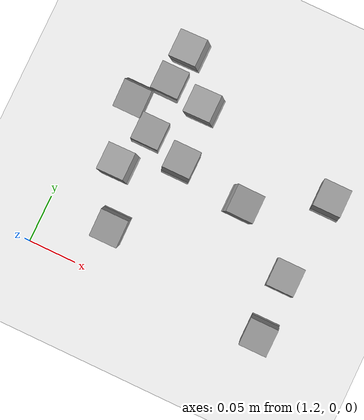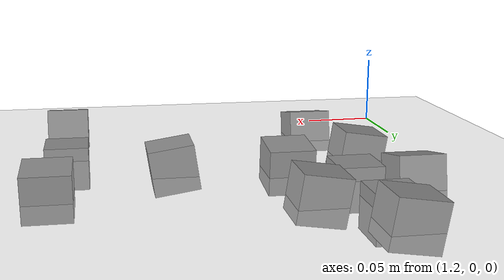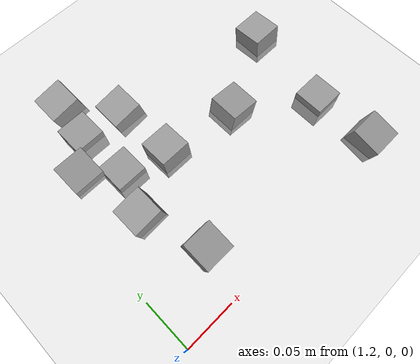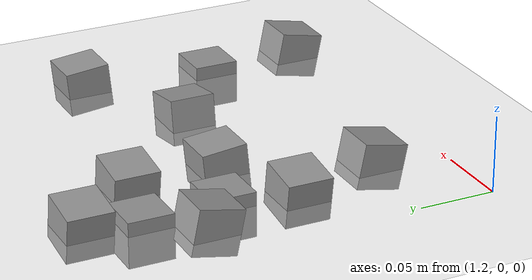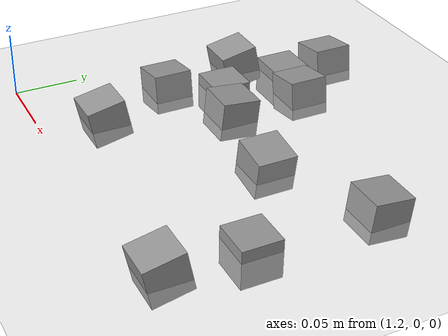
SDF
<sdf version="1.7">
 <world name="default">
  <model name="ground_plane">
   <static>1</static>
   <link name="link">
    <collision name="collision">
     <geometry><plane><normal>0 0 1</normal><size>100 100</size></plane></geometry>
     <surface><friction><ode><mu>100</mu><mu2>50</mu2></ode></friction></surface>
    </collision>
    <visual name="visual">
     <cast_shadows>0</cast_shadows>
     <geometry><plane><normal>0 0 1</normal><size>100 100</size></plane></geometry>
     <material>
      <script><uri>file://media/materials/scripts/gazebo.material</uri><name>Gazebo/Grey</name></script>
     </material>
    </visual>
   </link>
  </model>
  <model name="stone_road">
   <link name="link_0_clone_2_clone_2_clone_13_clone_clone_14">
    <inertial>
     <mass>1</mass>
     <inertia>
      <ixx>0.166667</ixx>
      <ixy>0</ixy>
      <ixz>0</ixz>
      <iyy>0.166667</iyy>
      <iyz>0</iyz>
      <izz>0.166667</izz>
     </inertia>
    </inertial>
    <pose>-0.190578 0.093923 0.003778 -0.1 0 0</pose>
    <kinematic>1</kinematic>
    <visual name="visual">
     <geometry><box><size>0.03 0.03 0.03</size></box></geometry>
     <material>
      <lighting>1</lighting>
      <script><uri>file://media/materials/scripts/gazebo.material</uri><name>Gazebo/Grey</name></script>
      <shader type="pixel"><normal_map>__default__</normal_map></shader>
      <ambient>0.3 0.3 0.3 1</ambient>
      <diffuse>0.7 0.7 0.7 1</diffuse>
      <specular>0.01 0.01 0.01 1</specular>
      <emissive>0 0 0 1</emissive>
     </material>
    </visual>
    <collision name="collision">
     <geometry><box><size>0.03 0.03 0.03</size></box></geometry>
     <surface>
      <friction>
       <ode><mu>1</mu><mu2>1</mu2><fdir1>0 0 0</fdir1><slip1>0</slip1><slip2>0</slip2></ode>
       <torsional>
        <coefficient>1</coefficient>
        <patch_radius>0</patch_radius>
        <surface_radius>0</surface_radius>
        <use_patch_radius>1</use_patch_radius>
        <ode><slip>0</slip></ode>
       </torsional>
      </friction>
      <bounce><restitution_coefficient>0</restitution_coefficient><threshold>1e+06</threshold></bounce>
      <contact>
       <collide_without_contact>0</collide_without_contact>
       <collide_without_contact_bitmask>1</collide_without_contact_bitmask>
       <collide_bitmask>1</collide_bitmask>
       <ode>
        <soft_cfm>0</soft_cfm>
        <soft_erp>0.2</soft_erp>
        <kp>1e+13</kp>
        <kd>1</kd>
        <max_vel>0.01</max_vel>
        <min_depth>0</min_depth>
       </ode>
       <bullet>
        <split_impulse>1</split_impulse>
        <split_impulse_penetration_threshold>-0.01</split_impulse_penetration_threshold>
        <soft_cfm>0</soft_cfm>
        <soft_erp>0.2</soft_erp>
        <kp>1e+13</kp>
        <kd>1</kd>
       </bullet>
      </contact>
     </surface>
    </collision>
   </link>
   <link name="link_0_clone_2_clone_2_clone_13_clone_clone_16_clone_31">
    <inertial>
     <mass>1</mass>
     <inertia>
      <ixx>0.166667</ixx>
      <ixy>0</ixy>
      <ixz>0</ixz>
      <iyy>0.166667</iyy>
      <iyz>0</iyz>
      <izz>0.166667</izz>
     </inertia>
    </inertial>
    <pose>-0.198811 0.004584 -0.006222 0 -0 0</pose>
    <kinematic>1</kinematic>
    <visual name="visual">
     <geometry><box><size>0.03 0.03 0.03</size></box></geometry>
     <material>
      <lighting>1</lighting>
      <script><uri>file://media/materials/scripts/gazebo.material</uri><name>Gazebo/Grey</name></script>
      <shader type="pixel"><normal_map>__default__</normal_map></shader>
      <ambient>0.3 0.3 0.3 1</ambient>
      <diffuse>0.7 0.7 0.7 1</diffuse>
      <specular>0.01 0.01 0.01 1</specular>
      <emissive>0 0 0 1</emissive>
     </material>
    </visual>
    <collision name="collision">
     <geometry><box><size>0.03 0.03 0.03</size></box></geometry>
     <surface>
      <friction>
       <ode><mu>1</mu><mu2>1</mu2><fdir1>0 0 0</fdir1><slip1>0</slip1><slip2>0</slip2></ode>
       <torsional>
        <coefficient>1</coefficient>
        <patch_radius>0</patch_radius>
        <surface_radius>0</surface_radius>
        <use_patch_radius>1</use_patch_radius>
        <ode><slip>0</slip></ode>
       </torsional>
      </friction>
      <bounce><restitution_coefficient>0</restitution_coefficient><threshold>1e+06</threshold></bounce>
      <contact>
       <collide_without_contact>0</collide_without_contact>
       <collide_without_contact_bitmask>1</collide_without_contact_bitmask>
       <collide_bitmask>1</collide_bitmask>
       <ode>
        <soft_cfm>0</soft_cfm>
        <soft_erp>0.2</soft_erp>
        <kp>1e+13</kp>
        <kd>1</kd>
        <max_vel>0.01</max_vel>
        <min_depth>0</min_depth>
       </ode>
       <bullet>
        <split_impulse>1</split_impulse>
        <split_impulse_penetration_threshold>-0.01</split_impulse_penetration_threshold>
        <soft_cfm>0</soft_cfm>
        <soft_erp>0.2</soft_erp>
        <kp>1e+13</kp>
        <kd>1</kd>
       </bullet>
      </contact>
     </surface>
    </collision>
   </link>
   <link name="link_0_clone_2_clone_5">
    <inertial>
     <mass>1</mass>
     <inertia>
      <ixx>0.166667</ixx>
      <ixy>0</ixy>
      <ixz>0</ixz>
      <iyy>0.166667</iyy>
      <iyz>0</iyz>
      <izz>0.166667</izz>
     </inertia>
    </inertial>
    <pose>-0.268485 0.053169 0.003778 0 0.15 0</pose>
    <kinematic>1</kinematic>
    <visual name="visual">
     <geometry><box><size>0.03 0.03 0.03</size></box></geometry>
     <material>
      <lighting>1</lighting>
      <script><uri>file://media/materials/scripts/gazebo.material</uri><name>Gazebo/Grey</name></script>
      <shader type="pixel"><normal_map>__default__</normal_map></shader>
      <ambient>0.3 0.3 0.3 1</ambient>
      <diffuse>0.7 0.7 0.7 1</diffuse>
      <specular>0.01 0.01 0.01 1</specular>
      <emissive>0 0 0 1</emissive>
     </material>
    </visual>
    <collision name="collision">
     <geometry><box><size>0.03 0.03 0.03</size></box></geometry>
     <surface>
      <friction>
       <ode><mu>1</mu><mu2>1</mu2><fdir1>0 0 0</fdir1><slip1>0</slip1><slip2>0</slip2></ode>
       <torsional>
        <coefficient>1</coefficient>
        <patch_radius>0</patch_radius>
        <surface_radius>0</surface_radius>
        <use_patch_radius>1</use_patch_radius>
        <ode><slip>0</slip></ode>
       </torsional>
      </friction>
      <bounce><restitution_coefficient>0</restitution_coefficient><threshold>1e+06</threshold></bounce>
      <contact>
       <collide_without_contact>0</collide_without_contact>
       <collide_without_contact_bitmask>1</collide_without_contact_bitmask>
       <collide_bitmask>1</collide_bitmask>
       <ode>
        <soft_cfm>0</soft_cfm>
        <soft_erp>0.2</soft_erp>
        <kp>1e+13</kp>
        <kd>1</kd>
        <max_vel>0.01</max_vel>
        <min_depth>0</min_depth>
       </ode>
       <bullet>
        <split_impulse>1</split_impulse>
        <split_impulse_penetration_threshold>-0.01</split_impulse_penetration_threshold>
        <soft_cfm>0</soft_cfm>
        <soft_erp>0.2</soft_erp>
        <kp>1e+13</kp>
        <kd>1</kd>
       </bullet>
      </contact>
     </surface>
    </collision>
   </link>
   <link name="link_0_clone_6">
    <inertial>
     <mass>1</mass>
     <inertia>
      <ixx>0.166667</ixx>
      <ixy>0</ixy>
      <ixz>0</ixz>
      <iyy>0.166667</iyy>
      <iyz>0</iyz>
      <izz>0.166667</izz>
     </inertia>
    </inertial>
    <pose>-0.198423 -0.058498 0.003778 0.2 -0 0</pose>
    <kinematic>1</kinematic>
    <visual name="visual">
     <geometry><box><size>0.03 0.03 0.03</size></box></geometry>
     <material>
      <lighting>1</lighting>
      <script><uri>file://media/materials/scripts/gazebo.material</uri><name>Gazebo/Grey</name></script>
      <shader type="pixel"><normal_map>__default__</normal_map></shader>
      <ambient>0.3 0.3 0.3 1</ambient>
      <diffuse>0.7 0.7 0.7 1</diffuse>
      <specular>0.01 0.01 0.01 1</specular>
      <emissive>0 0 0 1</emissive>
     </material>
    </visual>
    <collision name="collision">
     <geometry><box><size>0.03 0.03 0.03</size></box></geometry>
     <surface>
      <friction>
       <ode><mu>1</mu><mu2>1</mu2><fdir1>0 0 0</fdir1><slip1>0</slip1><slip2>0</slip2></ode>
       <torsional>
        <coefficient>1</coefficient>
        <patch_radius>0</patch_radius>
        <surface_radius>0</surface_radius>
        <use_patch_radius>1</use_patch_radius>
        <ode><slip>0</slip></ode>
       </torsional>
      </friction>
      <bounce><restitution_coefficient>0</restitution_coefficient><threshold>1e+06</threshold></bounce>
      <contact>
       <collide_without_contact>0</collide_without_contact>
       <collide_without_contact_bitmask>1</collide_without_contact_bitmask>
       <collide_bitmask>1</collide_bitmask>
       <ode>
        <soft_cfm>0</soft_cfm>
        <soft_erp>0.2</soft_erp>
        <kp>1e+13</kp>
        <kd>1</kd>
        <max_vel>0.01</max_vel>
        <min_depth>0</min_depth>
       </ode>
       <bullet>
        <split_impulse>1</split_impulse>
        <split_impulse_penetration_threshold>-0.01</split_impulse_penetration_threshold>
        <soft_cfm>0</soft_cfm>
        <soft_erp>0.2</soft_erp>
        <kp>1e+13</kp>
        <kd>1</kd>
       </bullet>
      </contact>
     </surface>
    </collision>
   </link>
   <static>0</static>
   <pose>1.64646 0.071889 -0 0 -0 0</pose>
  </model>
  <model name="stone_road_11">
   <link name="link_0_clone_12">
    <inertial>
     <mass>1</mass>
     <inertia>
      <ixx>0.166667</ixx>
      <ixy>0</ixy>
      <ixz>0</ixz>
      <iyy>0.166667</iyy>
      <iyz>0</iyz>
      <izz>0.166667</izz>
     </inertia>
    </inertial>
    <pose>0.142624 -0.262715 0.003778 0.2 -0 0</pose>
    <kinematic>1</kinematic>
    <visual name="visual">
     <geometry><box><size>0.03 0.03 0.03</size></box></geometry>
     <material>
      <lighting>1</lighting>
      <script><uri>file://media/materials/scripts/gazebo.material</uri><name>Gazebo/Grey</name></script>
      <shader type="pixel"><normal_map>__default__</normal_map></shader>
      <ambient>0.3 0.3 0.3 1</ambient>
      <diffuse>0.7 0.7 0.7 1</diffuse>
      <specular>0.01 0.01 0.01 1</specular>
      <emissive>0 0 0 1</emissive>
     </material>
    </visual>
    <collision name="collision">
     <geometry><box><size>0.03 0.03 0.03</size></box></geometry>
     <surface>
      <friction>
       <ode><mu>1</mu><mu2>1</mu2><fdir1>0 0 0</fdir1><slip1>0</slip1><slip2>0</slip2></ode>
       <torsional>
        <coefficient>1</coefficient>
        <patch_radius>0</patch_radius>
        <surface_radius>0</surface_radius>
        <use_patch_radius>1</use_patch_radius>
        <ode><slip>0</slip></ode>
       </torsional>
      </friction>
      <bounce><restitution_coefficient>0</restitution_coefficient><threshold>1e+06</threshold></bounce>
      <contact>
       <collide_without_contact>0</collide_without_contact>
       <collide_without_contact_bitmask>1</collide_without_contact_bitmask>
       <collide_bitmask>1</collide_bitmask>
       <ode>
        <soft_cfm>0</soft_cfm>
        <soft_erp>0.2</soft_erp>
        <kp>1e+13</kp>
        <kd>1</kd>
        <max_vel>0.01</max_vel>
        <min_depth>0</min_depth>
       </ode>
       <bullet>
        <split_impulse>1</split_impulse>
        <split_impulse_penetration_threshold>-0.01</split_impulse_penetration_threshold>
        <soft_cfm>0</soft_cfm>
        <soft_erp>0.2</soft_erp>
        <kp>1e+13</kp>
        <kd>1</kd>
       </bullet>
      </contact>
     </surface>
    </collision>
   </link>
   <link name="link_0_clone_13">
    <inertial>
     <mass>1</mass>
     <inertia>
      <ixx>0.166667</ixx>
      <ixy>0</ixy>
      <ixz>0</ixz>
      <iyy>0.166667</iyy>
      <iyz>0</iyz>
      <izz>0.166667</izz>
     </inertia>
    </inertial>
    <pose>0.107601 -0.134881 0.003778 0.2 -0 0</pose>
    <kinematic>1</kinematic>
    <visual name="visual">
     <geometry><box><size>0.03 0.03 0.03</size></box></geometry>
     <material>
      <lighting>1</lighting>
      <script><uri>file://media/materials/scripts/gazebo.material</uri><name>Gazebo/Grey</name></script>
      <shader type="pixel"><normal_map>__default__</normal_map></shader>
      <ambient>0.3 0.3 0.3 1</ambient>
      <diffuse>0.7 0.7 0.7 1</diffuse>
      <specular>0.01 0.01 0.01 1</specular>
      <emissive>0 0 0 1</emissive>
     </material>
    </visual>
    <collision name="collision">
     <geometry><box><size>0.03 0.03 0.03</size></box></geometry>
     <surface>
      <friction>
       <ode><mu>1</mu><mu2>1</mu2><fdir1>0 0 0</fdir1><slip1>0</slip1><slip2>0</slip2></ode>
       <torsional>
        <coefficient>1</coefficient>
        <patch_radius>0</patch_radius>
        <surface_radius>0</surface_radius>
        <use_patch_radius>1</use_patch_radius>
        <ode><slip>0</slip></ode>
       </torsional>
      </friction>
      <bounce><restitution_coefficient>0</restitution_coefficient><threshold>1e+06</threshold></bounce>
      <contact>
       <collide_without_contact>0</collide_without_contact>
       <collide_without_contact_bitmask>1</collide_without_contact_bitmask>
       <collide_bitmask>1</collide_bitmask>
       <ode>
        <soft_cfm>0</soft_cfm>
        <soft_erp>0.2</soft_erp>
        <kp>1e+13</kp>
        <kd>1</kd>
        <max_vel>0.01</max_vel>
        <min_depth>0</min_depth>
       </ode>
       <bullet>
        <split_impulse>1</split_impulse>
        <split_impulse_penetration_threshold>-0.01</split_impulse_penetration_threshold>
        <soft_cfm>0</soft_cfm>
        <soft_erp>0.2</soft_erp>
        <kp>1e+13</kp>
        <kd>1</kd>
       </bullet>
      </contact>
     </surface>
    </collision>
   </link>
   <link name="link_0_clone_2_clone_2_clone_13_clone_clone_11">
    <inertial>
     <mass>1</mass>
     <inertia>
      <ixx>0.166667</ixx>
      <ixy>0</ixy>
      <ixz>0</ixz>
      <iyy>0.166667</iyy>
      <iyz>0</iyz>
      <izz>0.166667</izz>
     </inertia>
    </inertial>
    <pose>0.178889 -0.173779 0.003778 -0.1 0 0</pose>
    <kinematic>1</kinematic>
    <visual name="visual">
     <geometry><box><size>0.03 0.03 0.03</size></box></geometry>
     <material>
      <lighting>1</lighting>
      <script><uri>file://media/materials/scripts/gazebo.material</uri><name>Gazebo/Grey</name></script>
      <shader type="pixel"><normal_map>__default__</normal_map></shader>
      <ambient>0.3 0.3 0.3 1</ambient>
      <diffuse>0.7 0.7 0.7 1</diffuse>
      <specular>0.01 0.01 0.01 1</specular>
      <emissive>0 0 0 1</emissive>
     </material>
    </visual>
    <collision name="collision">
     <geometry><box><size>0.03 0.03 0.03</size></box></geometry>
     <surface>
      <friction>
       <ode><mu>1</mu><mu2>1</mu2><fdir1>0 0 0</fdir1><slip1>0</slip1><slip2>0</slip2></ode>
       <torsional>
        <coefficient>1</coefficient>
        <patch_radius>0</patch_radius>
        <surface_radius>0</surface_radius>
        <use_patch_radius>1</use_patch_radius>
        <ode><slip>0</slip></ode>
       </torsional>
      </friction>
      <bounce><restitution_coefficient>0</restitution_coefficient><threshold>1e+06</threshold></bounce>
      <contact>
       <collide_without_contact>0</collide_without_contact>
       <collide_without_contact_bitmask>1</collide_without_contact_bitmask>
       <collide_bitmask>1</collide_bitmask>
       <ode>
        <soft_cfm>0</soft_cfm>
        <soft_erp>0.2</soft_erp>
        <kp>1e+13</kp>
        <kd>1</kd>
        <max_vel>0.01</max_vel>
        <min_depth>0</min_depth>
       </ode>
       <bullet>
        <split_impulse>1</split_impulse>
        <split_impulse_penetration_threshold>-0.01</split_impulse_penetration_threshold>
        <soft_cfm>0</soft_cfm>
        <soft_erp>0.2</soft_erp>
        <kp>1e+13</kp>
        <kd>1</kd>
       </bullet>
      </contact>
     </surface>
    </collision>
   </link>
   <link name="link_0_clone_2_clone_2_clone_13_clone_clone_16_clone_15">
    <inertial>
     <mass>1</mass>
     <inertia>
      <ixx>0.166667</ixx>
      <ixy>0</ixy>
      <ixz>0</ixz>
      <iyy>0.166667</iyy>
      <iyz>0</iyz>
      <izz>0.166667</izz>
     </inertia>
    </inertial>
    <pose>0.133032 -0.103459 -0.006222 0 -0 0</pose>
    <kinematic>1</kinematic>
    <visual name="visual">
     <geometry><box><size>0.03 0.03 0.03</size></box></geometry>
     <material>
      <lighting>1</lighting>
      <script><uri>file://media/materials/scripts/gazebo.material</uri><name>Gazebo/Grey</name></script>
      <shader type="pixel"><normal_map>__default__</normal_map></shader>
      <ambient>0.3 0.3 0.3 1</ambient>
      <diffuse>0.7 0.7 0.7 1</diffuse>
      <specular>0.01 0.01 0.01 1</specular>
      <emissive>0 0 0 1</emissive>
     </material>
    </visual>
    <collision name="collision">
     <geometry><box><size>0.03 0.03 0.03</size></box></geometry>
     <surface>
      <friction>
       <ode><mu>1</mu><mu2>1</mu2><fdir1>0 0 0</fdir1><slip1>0</slip1><slip2>0</slip2></ode>
       <torsional>
        <coefficient>1</coefficient>
        <patch_radius>0</patch_radius>
        <surface_radius>0</surface_radius>
        <use_patch_radius>1</use_patch_radius>
        <ode><slip>0</slip></ode>
       </torsional>
      </friction>
      <bounce><restitution_coefficient>0</restitution_coefficient><threshold>1e+06</threshold></bounce>
      <contact>
       <collide_without_contact>0</collide_without_contact>
       <collide_without_contact_bitmask>1</collide_without_contact_bitmask>
       <collide_bitmask>1</collide_bitmask>
       <ode>
        <soft_cfm>0</soft_cfm>
        <soft_erp>0.2</soft_erp>
        <kp>1e+13</kp>
        <kd>1</kd>
        <max_vel>0.01</max_vel>
        <min_depth>0</min_depth>
       </ode>
       <bullet>
        <split_impulse>1</split_impulse>
        <split_impulse_penetration_threshold>-0.01</split_impulse_penetration_threshold>
        <soft_cfm>0</soft_cfm>
        <soft_erp>0.2</soft_erp>
        <kp>1e+13</kp>
        <kd>1</kd>
       </bullet>
      </contact>
     </surface>
    </collision>
   </link>
   <link name="link_0_clone_2_clone_2_clone_13_clone_clone_16_clone_18">
    <inertial>
     <mass>1</mass>
     <inertia>
      <ixx>0.166667</ixx>
      <ixy>0</ixy>
      <ixz>0</ixz>
      <iyy>0.166667</iyy>
      <iyz>0</iyz>
      <izz>0.166667</izz>
     </inertia>
    </inertial>
    <pose>0.137197 -0.158693 -0.006222 0 -0 0</pose>
    <kinematic>1</kinematic>
    <visual name="visual">
     <geometry><box><size>0.03 0.03 0.03</size></box></geometry>
     <material>
      <lighting>1</lighting>
      <script><uri>file://media/materials/scripts/gazebo.material</uri><name>Gazebo/Grey</name></script>
      <shader type="pixel"><normal_map>__default__</normal_map></shader>
      <ambient>0.3 0.3 0.3 1</ambient>
      <diffuse>0.7 0.7 0.7 1</diffuse>
      <specular>0.01 0.01 0.01 1</specular>
      <emissive>0 0 0 1</emissive>
     </material>
    </visual>
    <collision name="collision">
     <geometry><box><size>0.03 0.03 0.03</size></box></geometry>
     <surface>
      <friction>
       <ode><mu>1</mu><mu2>1</mu2><fdir1>0 0 0</fdir1><slip1>0</slip1><slip2>0</slip2></ode>
       <torsional>
        <coefficient>1</coefficient>
        <patch_radius>0</patch_radius>
        <surface_radius>0</surface_radius>
        <use_patch_radius>1</use_patch_radius>
        <ode><slip>0</slip></ode>
       </torsional>
      </friction>
      <bounce><restitution_coefficient>0</restitution_coefficient><threshold>1e+06</threshold></bounce>
      <contact>
       <collide_without_contact>0</collide_without_contact>
       <collide_without_contact_bitmask>1</collide_without_contact_bitmask>
       <collide_bitmask>1</collide_bitmask>
       <ode>
        <soft_cfm>0</soft_cfm>
        <soft_erp>0.2</soft_erp>
        <kp>1e+13</kp>
        <kd>1</kd>
        <max_vel>0.01</max_vel>
        <min_depth>0</min_depth>
       </ode>
       <bullet>
        <split_impulse>1</split_impulse>
        <split_impulse_penetration_threshold>-0.01</split_impulse_penetration_threshold>
        <soft_cfm>0</soft_cfm>
        <soft_erp>0.2</soft_erp>
        <kp>1e+13</kp>
        <kd>1</kd>
       </bullet>
      </contact>
     </surface>
    </collision>
   </link>
   <link name="link_0_clone_2_clone_2_clone_5">
    <inertial>
     <mass>1</mass>
     <inertia>
      <ixx>0.166667</ixx>
      <ixy>0</ixy>
      <ixz>0</ixz>
      <iyy>0.166667</iyy>
      <iyz>0</iyz>
      <izz>0.166667</izz>
     </inertia>
    </inertial>
    <pose>0.13842 -0.067468 0.003778 0 -0.15 0</pose>
    <kinematic>1</kinematic>
    <visual name="visual">
     <geometry><box><size>0.03 0.03 0.03</size></box></geometry>
     <material>
      <lighting>1</lighting>
      <script><uri>file://media/materials/scripts/gazebo.material</uri><name>Gazebo/Grey</name></script>
      <shader type="pixel"><normal_map>__default__</normal_map></shader>
      <ambient>0.3 0.3 0.3 1</ambient>
      <diffuse>0.7 0.7 0.7 1</diffuse>
      <specular>0.01 0.01 0.01 1</specular>
      <emissive>0 0 0 1</emissive>
     </material>
    </visual>
    <collision name="collision">
     <geometry><box><size>0.03 0.03 0.03</size></box></geometry>
     <surface>
      <friction>
       <ode><mu>1</mu><mu2>1</mu2><fdir1>0 0 0</fdir1><slip1>0</slip1><slip2>0</slip2></ode>
       <torsional>
        <coefficient>1</coefficient>
        <patch_radius>0</patch_radius>
        <surface_radius>0</surface_radius>
        <use_patch_radius>1</use_patch_radius>
        <ode><slip>0</slip></ode>
       </torsional>
      </friction>
      <bounce><restitution_coefficient>0</restitution_coefficient><threshold>1e+06</threshold></bounce>
      <contact>
       <collide_without_contact>0</collide_without_contact>
       <collide_without_contact_bitmask>1</collide_without_contact_bitmask>
       <collide_bitmask>1</collide_bitmask>
       <ode>
        <soft_cfm>0</soft_cfm>
        <soft_erp>0.2</soft_erp>
        <kp>1e+13</kp>
        <kd>1</kd>
        <max_vel>0.01</max_vel>
        <min_depth>0</min_depth>
       </ode>
       <bullet>
        <split_impulse>1</split_impulse>
        <split_impulse_penetration_threshold>-0.01</split_impulse_penetration_threshold>
        <soft_cfm>0</soft_cfm>
        <soft_erp>0.2</soft_erp>
        <kp>1e+13</kp>
        <kd>1</kd>
       </bullet>
      </contact>
     </surface>
    </collision>
   </link>
   <link name="link_0_clone_2_clone_2_clone_7">
    <inertial>
     <mass>1</mass>
     <inertia>
      <ixx>0.166667</ixx>
      <ixy>0</ixy>
      <ixz>0</ixz>
      <iyy>0.166667</iyy>
      <iyz>0</iyz>
      <izz>0.166667</izz>
     </inertia>
    </inertial>
    <pose>0.175499 -0.112442 0.003778 0 -0.15 0</pose>
    <kinematic>1</kinematic>
    <visual name="visual">
     <geometry><box><size>0.03 0.03 0.03</size></box></geometry>
     <material>
      <lighting>1</lighting>
      <script><uri>file://media/materials/scripts/gazebo.material</uri><name>Gazebo/Grey</name></script>
      <shader type="pixel"><normal_map>__default__</normal_map></shader>
      <ambient>0.3 0.3 0.3 1</ambient>
      <diffuse>0.7 0.7 0.7 1</diffuse>
      <specular>0.01 0.01 0.01 1</specular>
      <emissive>0 0 0 1</emissive>
     </material>
    </visual>
    <collision name="collision">
     <geometry><box><size>0.03 0.03 0.03</size></box></geometry>
     <surface>
      <friction>
       <ode><mu>1</mu><mu2>1</mu2><fdir1>0 0 0</fdir1><slip1>0</slip1><slip2>0</slip2></ode>
       <torsional>
        <coefficient>1</coefficient>
        <patch_radius>0</patch_radius>
        <surface_radius>0</surface_radius>
        <use_patch_radius>1</use_patch_radius>
        <ode><slip>0</slip></ode>
       </torsional>
      </friction>
      <bounce><restitution_coefficient>0</restitution_coefficient><threshold>1e+06</threshold></bounce>
      <contact>
       <collide_without_contact>0</collide_without_contact>
       <collide_without_contact_bitmask>1</collide_without_contact_bitmask>
       <collide_bitmask>1</collide_bitmask>
       <ode>
        <soft_cfm>0</soft_cfm>
        <soft_erp>0.2</soft_erp>
        <kp>1e+13</kp>
        <kd>1</kd>
        <max_vel>0.01</max_vel>
        <min_depth>0</min_depth>
       </ode>
       <bullet>
        <split_impulse>1</split_impulse>
        <split_impulse_penetration_threshold>-0.01</split_impulse_penetration_threshold>
        <soft_cfm>0</soft_cfm>
        <soft_erp>0.2</soft_erp>
        <kp>1e+13</kp>
        <kd>1</kd>
       </bullet>
      </contact>
     </surface>
    </collision>
   </link>
   <link name="link_0_clone_2_clone_2_clone_8">
    <inertial>
     <mass>1</mass>
     <inertia>
      <ixx>0.166667</ixx>
      <ixy>0</ixy>
      <ixz>0</ixz>
      <iyy>0.166667</iyy>
      <iyz>0</iyz>
      <izz>0.166667</izz>
     </inertia>
    </inertial>
    <pose>0.122141 -0.201696 0.003778 0 -0.15 0</pose>
    <kinematic>1</kinematic>
    <visual name="visual">
     <geometry><box><size>0.03 0.03 0.03</size></box></geometry>
     <material>
      <lighting>1</lighting>
      <script><uri>file://media/materials/scripts/gazebo.material</uri><name>Gazebo/Grey</name></script>
      <shader type="pixel"><normal_map>__default__</normal_map></shader>
      <ambient>0.3 0.3 0.3 1</ambient>
      <diffuse>0.7 0.7 0.7 1</diffuse>
      <specular>0.01 0.01 0.01 1</specular>
      <emissive>0 0 0 1</emissive>
     </material>
    </visual>
    <collision name="collision">
     <geometry><box><size>0.03 0.03 0.03</size></box></geometry>
     <surface>
      <friction>
       <ode><mu>1</mu><mu2>1</mu2><fdir1>0 0 0</fdir1><slip1>0</slip1><slip2>0</slip2></ode>
       <torsional>
        <coefficient>1</coefficient>
        <patch_radius>0</patch_radius>
        <surface_radius>0</surface_radius>
        <use_patch_radius>1</use_patch_radius>
        <ode><slip>0</slip></ode>
       </torsional>
      </friction>
      <bounce><restitution_coefficient>0</restitution_coefficient><threshold>1e+06</threshold></bounce>
      <contact>
       <collide_without_contact>0</collide_without_contact>
       <collide_without_contact_bitmask>1</collide_without_contact_bitmask>
       <collide_bitmask>1</collide_bitmask>
       <ode>
        <soft_cfm>0</soft_cfm>
        <soft_erp>0.2</soft_erp>
        <kp>1e+13</kp>
        <kd>1</kd>
        <max_vel>0.01</max_vel>
        <min_depth>0</min_depth>
       </ode>
       <bullet>
        <split_impulse>1</split_impulse>
        <split_impulse_penetration_threshold>-0.01</split_impulse_penetration_threshold>
        <soft_cfm>0</soft_cfm>
        <soft_erp>0.2</soft_erp>
        <kp>1e+13</kp>
        <kd>1</kd>
       </bullet>
      </contact>
     </surface>
    </collision>
   </link>
   <static>0</static>
   <pose>1.12471 0.310289 -0 0 -0 0</pose>
  </model>
 </world>
</sdf>
